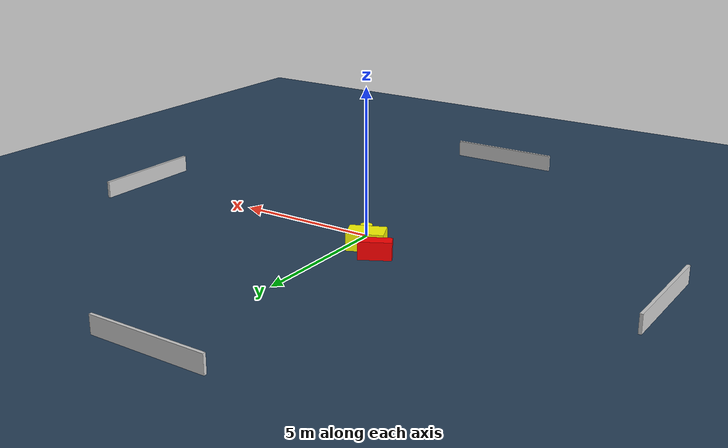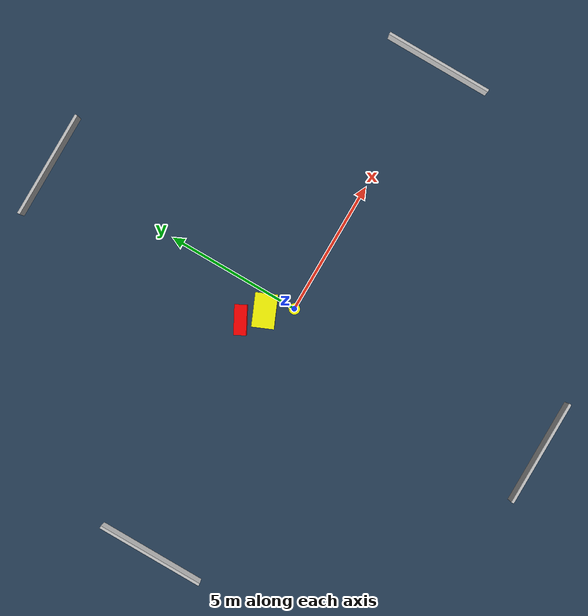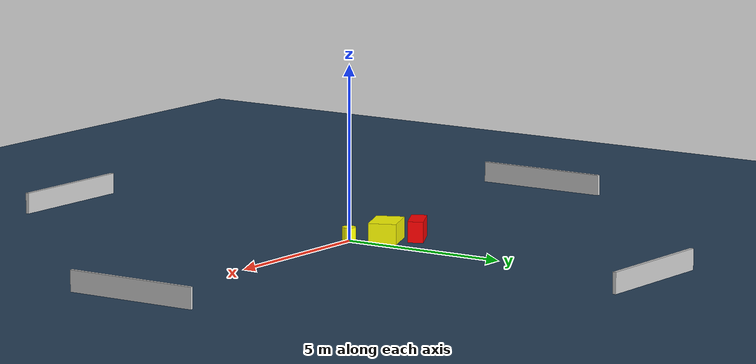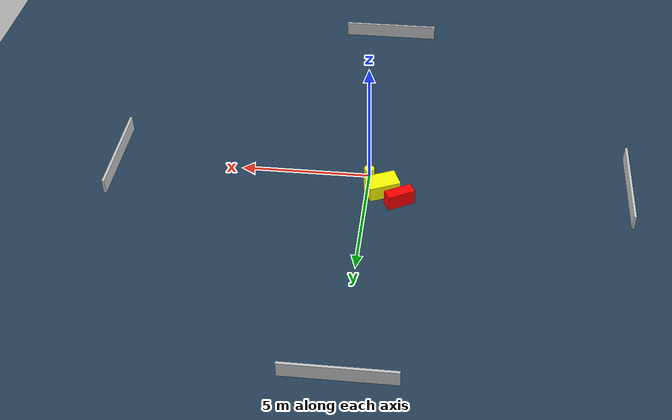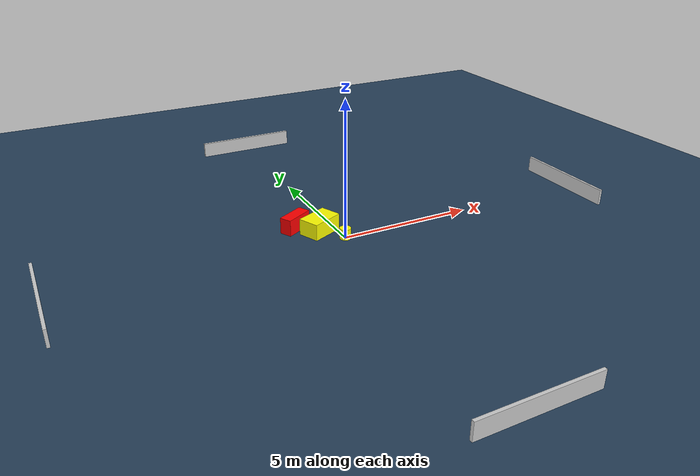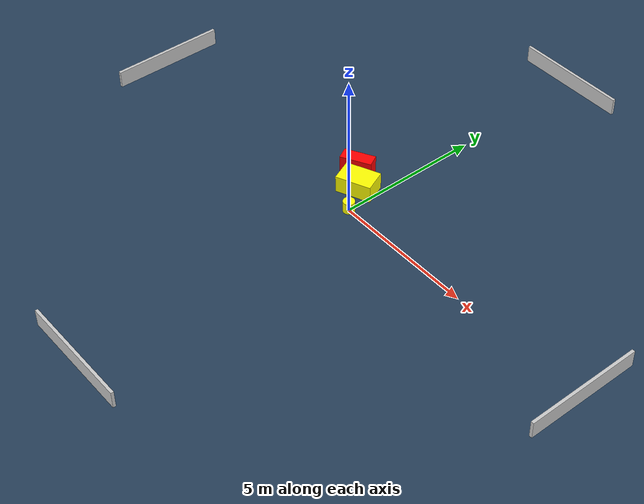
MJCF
<?xml version="1.0" ?>
<mujoco model="generated_environment">
  <option timestep="0.01" integrator="RK4" cone="elliptic"/>
  <default>
    <geom density="1"/>
  </default>
  <asset>
    <texture builtin="gradient" height="3072" name="skybox" rgb1="0.3 0.5 0.7" rgb2="0 0 0" type="skybox" width="512"/>
    <texture builtin="checker" height="300" name="groundplane" rgb1="0.2 0.3 0.4" rgb2="0.1 0.2 0.3" type="2d" width="300"/>
    <material name="groundplane" reflectance="0.2" texrepeat="5 5" texture="groundplane"/>
  </asset>
  <worldbody>
    <light dir="0 0 -1" directional="true" pos="0 0 1.5"/>
    <geom condim="3" friction="0.5 0.005 0.001" material="groundplane" name="floor" pos="0 0 0" size="0 0 0.05" type="plane"/>
    <body name="walls">
      <geom name="wall_1" condim="4" pos="-10.0 0.0 0.3" rgba="0.800000011920929 0.800000011920929 0.800000011920929 1.0" size="0.05 2.0 0.3" type="box"/>
      <geom name="wall_2" condim="4" pos="10.0 0.0 0.3" rgba="0.800000011920929 0.800000011920929 0.800000011920929 1.0" size="0.05 2.0 0.3" type="box"/>
      <geom name="wall_3" condim="4" pos="0.0 -10.0 0.3" rgba="0.800000011920929 0.800000011920929 0.800000011920929 1.0" size="2.0 0.05 0.3" type="box"/>
      <geom name="wall_4" condim="4" pos="0.0 10.0 0.3" rgba="0.800000011920929 0.800000011920929 0.800000011920929 1.0" size="2.0 0.05 0.3" type="box"/>
    </body>
    <body name="robot">
      <joint name="joint_x" type="slide" pos="0 0 0" axis="1 0 0"/>
      <joint name="joint_y" type="slide" pos="0 0 0" axis="0 1 0"/>
      <geom name="robot" type="cylinder" pos="0.0 0.0 0.2" size="0.2 0.2 0.0" mass="5.0" friction="1.0 0.005 0.0001" condim="4" rgba="1.0 1.0 0.0 1.0"/>
    </body>
    <body name="obstacle_1_movable">
      <geom name="obstacle_1_movable" condim="4" pos="-0.5821446073057385 0.8665748010817376 0.3" euler="0 0 23.37097197676018" friction="0.0 0.005 0.001" rgba="1.0 1.0 0.0 1.0" size="0.6118946333817359 0.3993196036839135 0.3" type="box" mass="0.1"/>
      <joint type="free"/>
    </body>
    <body name="obstacle_2_static">
      <geom name="obstacle_2_static" condim="4" pos="-1.2880665704274437 1.440895129210826 0.3" euler="0 0 28.390268508079348" friction="0.0 0.005 0.001" rgba="1.0 0.0 0.0 1.0" size="0.5414834406050528 0.22351846290013383 0.3" type="box"/>
    </body>
  </worldbody>
  <actuator>
    <motor name="actuator_x" joint="joint_x" gear="1" ctrlrange="-1 1"/>
    <motor name="actuator_y" joint="joint_y" gear="1" ctrlrange="-1 1"/>
  </actuator>
</mujoco>
